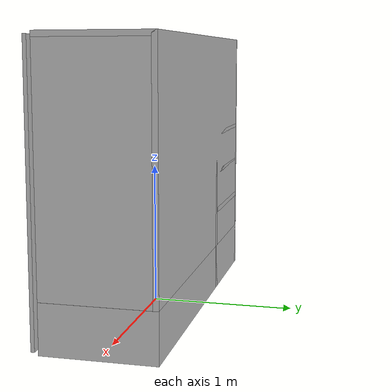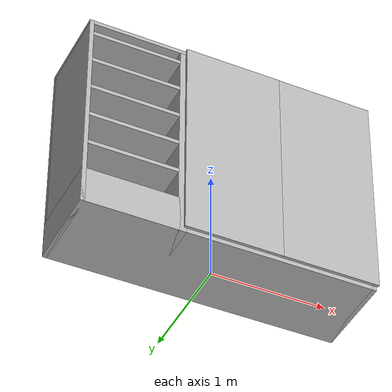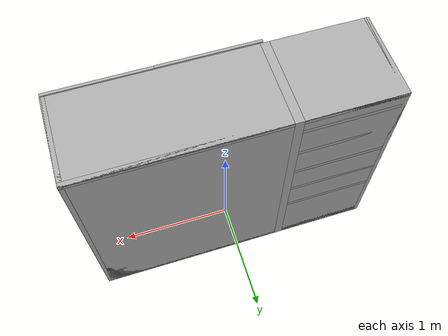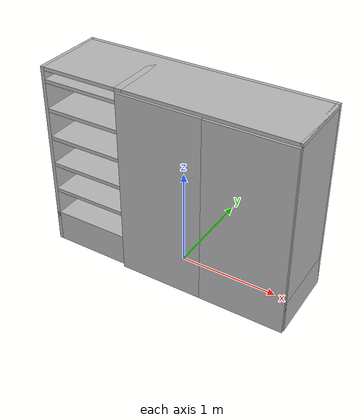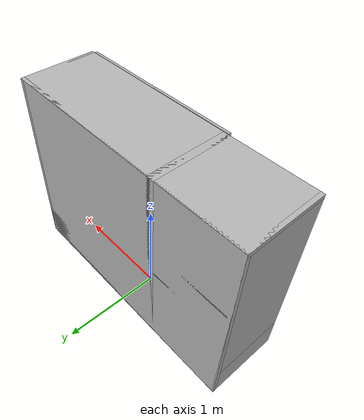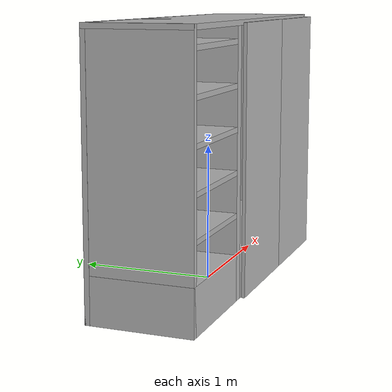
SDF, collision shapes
<?xml version="1.0"?>
<sdf version="1.4">
  <model name="closet">
    <static>false</static>

    <link name="body">
      <inertial>
        <mass>50</mass>
        <inertia>
          <ixx>1</ixx>
          <ixy>0</ixy>
          <ixz>0</ixz>
          <iyy>1</iyy>
          <iyz>0</iyz>
          <izz>0.7</izz>
        </inertia>
      </inertial>
      <visual name="visual">
<pose>0.0013 -0.013 0 0 0 0</pose>
        <geometry>
          <mesh>
            <uri>model://closet/meshes/closet_body.dae</uri>
          </mesh>
        </geometry>
      </visual>

      <collision name="body_1">
<pose>0 0 0.166 0 0 0</pose>
        <geometry>
<box><size>2.544 0.754 0.332</size></box>
        </geometry>
      </collision>

      <collision name="body_2">
<pose>1.253 0 0.967 0 0 0</pose>
        <geometry>
<box><size>0.037 0.754 1.934</size></box>
        </geometry>
      </collision>

      <collision name="body_3">
<pose>-1.253 0 0.967 0 0 0</pose>
        <geometry>
<box><size>0.037 0.754 1.934</size></box>
        </geometry>
      </collision>

      <collision name="body_4">
<pose>-0.425 0 0.967 0 0 0</pose>
        <geometry>
<box><size>0.074 0.754 1.934</size></box>
        </geometry>
      </collision>

      <collision name="body_5">
<pose>0 0.3585 0.967 0 0 0</pose>
        <geometry>
<box><size>2.544 0.037 1.934</size></box>
        </geometry>
      </collision>

      <collision name="body_6">
<pose>-0.848 0 0.6085 0 0 0</pose>
        <geometry>
<box><size>0.774 0.754 0.037</size></box>
        </geometry>
      </collision>

      <collision name="body_7">
<pose>-0.848 0 0.9055 0 0 0</pose>
        <geometry>
<box><size>0.774 0.754 0.037</size></box>
        </geometry>
      </collision>

      <collision name="body_8">
<pose>-0.848 0 1.2015 0 0 0</pose>
        <geometry>
<box><size>0.774 0.754 0.037</size></box>
        </geometry>
      </collision>

      <collision name="body_9">
<pose>-0.848 0 1.4975 0 0 0</pose>
        <geometry>
<box><size>0.774 0.754 0.037</size></box>
        </geometry>
      </collision>

      <collision name="body_10">
<pose>-0.848 0 1.7935 0 0 0</pose>
        <geometry>
<box><size>0.774 0.754 0.037</size></box>
        </geometry>
      </collision>

      <collision name="body_11">
<pose>0 0 1.9155 0 0 0</pose>
        <geometry>
<box><size>2.544 0.754 0.037</size></box>
        </geometry>
      </collision>
    </link>

<link name="left_door">
      <inertial>
        <mass>2</mass>
        <inertia>
          <ixx>1</ixx>
          <ixy>0</ixy>
          <ixz>0</ixz>
          <iyy>1</iyy>
          <iyz>0</iyz>
          <izz>1</izz>
        </inertia>
      </inertial>
<pose>0.848 -0.414 0.019 0 0 0</pose>
      <visual name="visual">
<pose>-0.0185 0 0 0 0 0</pose>
        <geometry>
          <mesh>
            <uri>model://closet/meshes/closet_left_door.dae</uri>
          </mesh>
        </geometry>
      </visual>

      <collision name="door">
<pose>0 0 0.948 0 0 0</pose>
        <geometry>
<box><size>0.848 0.025 1.896</size></box>
        </geometry>
      </collision>
</link>

<link name="right_door">
      <inertial>
        <mass>2</mass>
        <inertia>
          <ixx>1</ixx>
          <ixy>0</ixy>
          <ixz>0</ixz>
          <iyy>1</iyy>
          <iyz>0</iyz>
          <izz>1</izz>
        </inertia>
      </inertial>
<pose>0 -0.414 0.019 0 0 0</pose>
      <visual name="visual">
<pose>0.006 0.8475 0 0 0 0</pose>
        <geometry>
          <mesh>
            <uri>model://closet/meshes/closet_right_door.dae</uri>
          </mesh>
        </geometry>
      </visual>
      <collision name="door">
<pose>0 0 0.949 0 0 0</pose>
        <geometry>
<box><size>0.848 0.025 1.898</size></box>
        </geometry>
      </collision>
</link>

      <joint type="revolute" name="left_door_joint">
        <pose>0.424 0 0 0 0 0</pose>
        <child>left_door</child>
        <parent>body</parent>
        <axis>
    		<limit>
      			<upper>2</upper>
      			<lower>0</lower>
    		</limit>
          <xyz>0 0 1</xyz>
          <dynamics>
            <damping>10</damping>
          </dynamics>
        </axis>
      </joint>

      <joint type="revolute" name="right_door_joint">
        <pose>-0.424 0 0 0 0 0</pose>
        <child>right_door</child>
        <parent>body</parent>
        <axis>
    		<limit>
      			<upper>0</upper>
      			<lower>-2</lower>
    		</limit>
          <xyz>0 0 1</xyz>
          <dynamics>
            <damping>10</damping>
          </dynamics>
        </axis>
      </joint>

  </model>
</sdf>
